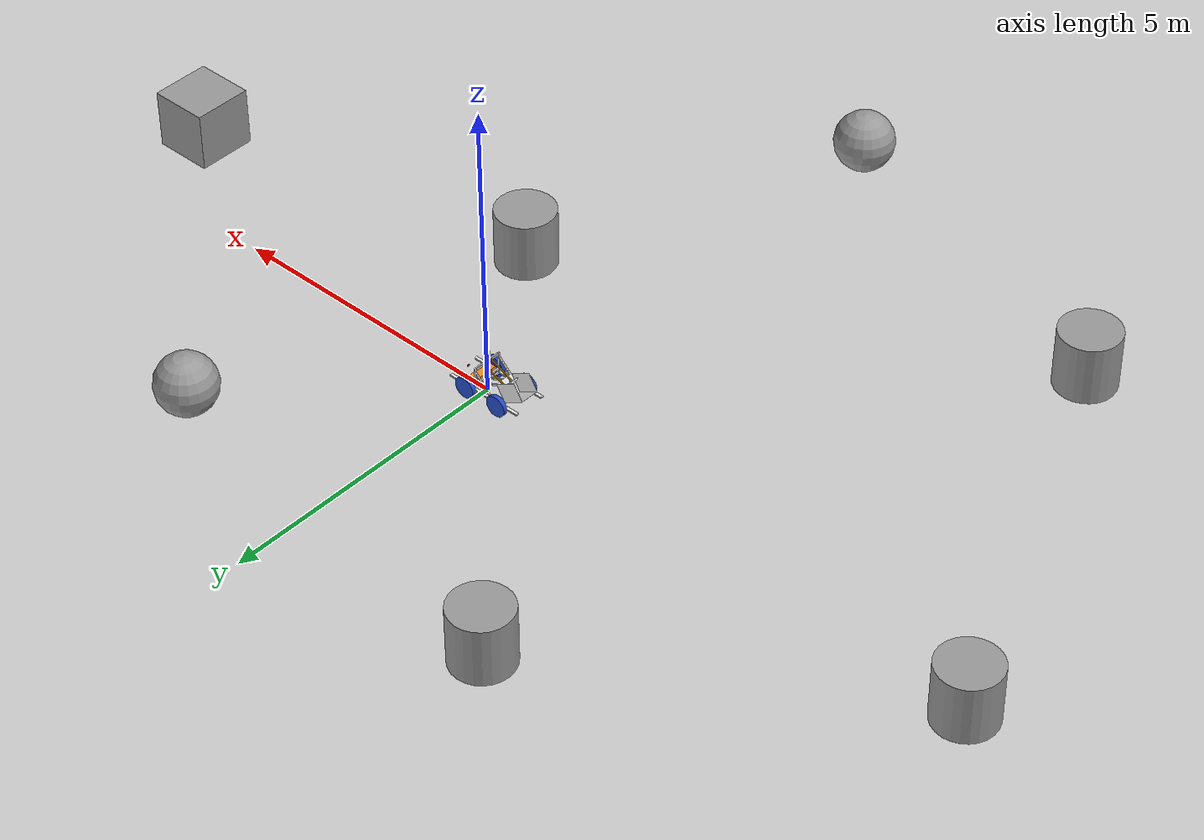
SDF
<sdf version="1.7">
 <world name="default">
  <light name="sun" type="directional">
   <pose>0 0 10 0 -0 0</pose>
   <diffuse>0.8 0.8 0.8 1</diffuse>
   <specular>0.2 0.2 0.2 1</specular>
   <attenuation>
    <range>1000</range>
    <constant>0.9</constant>
    <linear>0.01</linear>
    <quadratic>0.001</quadratic>
   </attenuation>
   <direction>-0.5 0.1 -0.9</direction>
   <spot><inner_angle>0</inner_angle><outer_angle>0</outer_angle><falloff>0</falloff></spot>
  </light>
  <model name="ground_plane">
   <static>1</static>
   <link name="link">
    <collision name="collision">
     <geometry><plane><normal>0 0 1</normal><size>100 100</size></plane></geometry>
     <surface><friction><ode><mu>100</mu><mu2>50</mu2></ode></friction></surface>
    </collision>
    <visual name="visual">
     <cast_shadows>0</cast_shadows>
     <geometry><plane><normal>0 0 1</normal><size>100 100</size></plane></geometry>
     <material>
      <script><uri>file://media/materials/scripts/gazebo.material</uri><name>Gazebo/Grey</name></script>
     </material>
    </visual>
   </link>
  </model>
  <gravity>0 0 -9.8</gravity>
  <magnetic_field>6e-06 2.3e-05 -4.2e-05</magnetic_field>
  <atmosphere type="adiabatic"/>
  <physics type="ode">
   <max_step_size>0.001</max_step_size>
   <real_time_factor>1</real_time_factor>
   <real_time_update_rate>1000</real_time_update_rate>
  </physics>
  <scene><ambient>0.4 0.4 0.4 1</ambient><background>0.7 0.7 0.7 1</background><shadows>1</shadows></scene>
  <audio><device>default</device></audio>
  <spherical_coordinates>
   <surface_model>EARTH_WGS84</surface_model>
   <latitude_deg>0</latitude_deg>
   <longitude_deg>0</longitude_deg>
   <elevation>0</elevation>
   <heading_deg>0</heading_deg>
  </spherical_coordinates>
  <model name="my_bot">
   <link name="base_link">
    <inertial>
     <pose>-0.133131 -0 0.074762 0 -0 0</pose>
     <mass>591.326</mass>
     <inertia>
      <ixx>31.0922</ixx>
      <ixy>4.72975e-16</ixy>
      <ixz>10.7603</ixz>
      <iyy>194.518</iyy>
      <iyz>-1.54585e-16</iyz>
      <izz>211.898</izz>
     </inertia>
    </inertial>
    <collision name="base_link_fixed_joint_lump__doser_back_collision">
     <pose>-0.4205 0 0.095 0 0.540722 0</pose>
     <geometry><box><size>0.005 0.3225 0.312</size></box></geometry>
    </collision>
    <collision name="base_link_fixed_joint_lump__doser_base_collision_1">
     <pose>-0.675 0 0.066 0 0.540722 0</pose>
     <geometry><box><size>0.4153 0.3225 0.005</size></box></geometry>
    </collision>
    <collision name="base_link_fixed_joint_lump__doser_left_collision_2">
     <pose>-0.597 -0.158753 0.2 0 0.540722 0</pose>
     <geometry><box><size>0.4153 0.005 0.307</size></box></geometry>
    </collision>
    <collision name="base_link_fixed_joint_lump__doser_right_collision_3">
     <pose>-0.597 0.158753 0.2 0 0.540722 0</pose>
     <geometry><box><size>0.4153 0.005 0.307</size></box></geometry>
    </collision>
    <collision name="base_link_fixed_joint_lump__actuator_left_collision_4">
     <pose>-0.205 -0.076025 0.285 0 -0.418879 0</pose>
     <geometry><box><size>0.4575 0.02 0.02</size></box></geometry>
    </collision>
    <collision name="base_link_fixed_joint_lump__actuator_right_collision_5">
     <pose>-0.205 0.076025 0.285 0 -0.418879 0</pose>
     <geometry><box><size>0.4575 0.02 0.02</size></box></geometry>
    </collision>
    <collision name="base_link_fixed_joint_lump__back_left_wheel_collision_6">
     <pose>-0.49 -0.3182 0 -1.5708 0 0</pose>
     <geometry><sphere><radius>0.1778</radius></sphere></geometry>
     <surface><friction><ode><mu>0.001</mu><mu2>0.001</mu2></ode></friction></surface>
    </collision>
    <collision name="base_link_fixed_joint_lump__back_right_wheel_collision_7">
     <pose>-0.49 0.3182 0 1.5708 -0 0</pose>
     <geometry><sphere><radius>0.1778</radius></sphere></geometry>
     <surface><friction><ode><mu>0.001</mu><mu2>0.001</mu2></ode></friction></surface>
    </collision>
    <collision name="base_link_fixed_joint_lump__chassis_base_left_collision_8">
     <pose>-0.17965 -0.2604 0 0 -0 0</pose>
     <geometry><box><size>1.3501 0.0508 0.0254</size></box></geometry>
    </collision>
    <collision name="base_link_fixed_joint_lump__chassis_base_right_collision_9">
     <pose>-0.17965 0.2604 0 0 -0 0</pose>
     <geometry><box><size>1.3501 0.0508 0.0254</size></box></geometry>
    </collision>
    <collision name="base_link_fixed_joint_lump__doser_profile_left_collision_10">
     <pose>-0.2286 -0.076025 0.1 0 0.418879 0</pose>
     <geometry><box><size>0.49 0.0254 0.0254</size></box></geometry>
    </collision>
    <collision name="base_link_fixed_joint_lump__doser_profile_right_collision_11">
     <pose>-0.2286 0.076025 0.1 0 0.418879 0</pose>
     <geometry><box><size>0.49 0.0254 0.0254</size></box></geometry>
    </collision>
    <collision name="base_link_fixed_joint_lump__doser_profile_top_collision_12">
     <pose>-0.4596 0 0.20245 0 0.418879 0</pose>
     <geometry><box><size>0.0254 0.3075 0.0254</size></box></geometry>
    </collision>
    <collision name="base_link_fixed_joint_lump__laser_frame_collision_13">
     <pose>0 0 0.5334 0 -0 0</pose>
     <geometry><cylinder><length>0.04</length><radius>0.05</radius></cylinder></geometry>
    </collision>
    <collision name="base_link_fixed_joint_lump__motor_base_back_collision_14">
     <pose>0.175 0 0 0 -0 0</pose>
     <geometry><box><size>0.0254 0.4702 0.0254</size></box></geometry>
    </collision>
    <collision name="base_link_fixed_joint_lump__motor_base_front_collision_15">
     <pose>0.1 0 0 0 -0 0</pose>
     <geometry><box><size>0.0254 0.4702 0.0254</size></box></geometry>
    </collision>
    <collision name="base_link_fixed_joint_lump__motor_collision_16">
     <pose>0.145 0 0.0375 0 -0 0</pose>
     <geometry><box><size>0.15 0.5 0.075</size></box></geometry>
    </collision>
    <collision name="base_link_fixed_joint_lump__tower_base_collision_17">
     <geometry><box><size>0.0254 0.4702 0.0254</size></box></geometry>
    </collision>
    <collision name="base_link_fixed_joint_lump__tower_middle_collision_18">
     <pose>0 0 0.08 0 -0 0</pose>
     <geometry><box><size>0.0254 0.4702 0.0254</size></box></geometry>
    </collision>
    <collision name="base_link_fixed_joint_lump__tower_support_left_collision_19">
     <pose>-0.15635 -0.2478 0.16 0 -0.785398 0</pose>
     <geometry><box><size>0.4572 0.0254 0.0254</size></box></geometry>
    </collision>
    <collision name="base_link_fixed_joint_lump__tower_support_right_collision_20">
     <pose>-0.15635 0.2478 0.16 0 -0.785398 0</pose>
     <geometry><box><size>0.4572 0.0254 0.0254</size></box></geometry>
    </collision>
    <collision name="base_link_fixed_joint_lump__tower_top_collision_21">
     <pose>0 0 0.3626 0 -0 0</pose>
     <geometry><box><size>0.0254 0.4702 0.0508</size></box></geometry>
    </collision>
    <collision name="base_link_fixed_joint_lump__tower_up_left_collision_22">
     <pose>0 -0.2478 0.194 0 -0 0</pose>
     <geometry><box><size>0.0254 0.0254 0.388</size></box></geometry>
    </collision>
    <collision name="base_link_fixed_joint_lump__tower_up_right_collision_23">
     <pose>0 0.2478 0.194 0 -0 0</pose>
     <geometry><box><size>0.0254 0.0254 0.388</size></box></geometry>
    </collision>
    <visual name="base_link_fixed_joint_lump__doser_back_visual">
     <pose>-0.4205 0 0.095 0 0.540722 0</pose>
     <geometry><box><size>0.005 0.3225 0.312</size></box></geometry>
     <material>
      <script><name>Gazebo/White</name><uri>file://media/materials/scripts/gazebo.material</uri></script>
     </material>
    </visual>
    <visual name="base_link_fixed_joint_lump__doser_base_visual_1">
     <pose>-0.675 0 0.066 0 0.540722 0</pose>
     <geometry><box><size>0.4153 0.3225 0.005</size></box></geometry>
     <material>
      <script><name>Gazebo/White</name><uri>file://media/materials/scripts/gazebo.material</uri></script>
     </material>
    </visual>
    <visual name="base_link_fixed_joint_lump__doser_left_visual_2">
     <pose>-0.597 -0.158753 0.2 0 0.540722 0</pose>
     <geometry><box><size>0.4153 0.005 0.307</size></box></geometry>
     <material>
      <script><name>Gazebo/White</name><uri>file://media/materials/scripts/gazebo.material</uri></script>
     </material>
    </visual>
    <visual name="base_link_fixed_joint_lump__doser_right_visual_3">
     <pose>-0.597 0.158753 0.2 0 0.540722 0</pose>
     <geometry><box><size>0.4153 0.005 0.307</size></box></geometry>
     <material>
      <script><name>Gazebo/White</name><uri>file://media/materials/scripts/gazebo.material</uri></script>
     </material>
    </visual>
    <visual name="base_link_fixed_joint_lump__actuator_left_visual_4">
     <pose>-0.205 -0.076025 0.285 0 -0.418879 0</pose>
     <geometry><box><size>0.4575 0.02 0.02</size></box></geometry>
     <material>
      <script><name>Gazebo/Orange</name><uri>file://media/materials/scripts/gazebo.material</uri></script>
     </material>
    </visual>
    <visual name="base_link_fixed_joint_lump__actuator_right_visual_5">
     <pose>-0.205 0.076025 0.285 0 -0.418879 0</pose>
     <geometry><box><size>0.4575 0.02 0.02</size></box></geometry>
     <material>
      <script><name>Gazebo/Orange</name><uri>file://media/materials/scripts/gazebo.material</uri></script>
     </material>
    </visual>
    <visual name="base_link_fixed_joint_lump__back_left_wheel_visual_6">
     <pose>-0.49 -0.3182 0 -1.5708 0 0</pose>
     <geometry><cylinder><length>0.07</length><radius>0.1778</radius></cylinder></geometry>
     <material>
      <script><name>Gazebo/Blue</name><uri>file://media/materials/scripts/gazebo.material</uri></script>
     </material>
    </visual>
    <visual name="base_link_fixed_joint_lump__back_right_wheel_visual_7">
     <pose>-0.49 0.3182 0 1.5708 -0 0</pose>
     <geometry><cylinder><length>0.07</length><radius>0.1778</radius></cylinder></geometry>
     <material>
      <script><name>Gazebo/Blue</name><uri>file://media/materials/scripts/gazebo.material</uri></script>
     </material>
    </visual>
    <visual name="base_link_fixed_joint_lump__camera_link_visual_8">
     <pose>0.3879 0 0.075 0 -0 0</pose>
     <geometry><box><size>0.01 0.03 0.03</size></box></geometry>
     <material>
      <script><name>Gazebo/Red</name><uri>file://media/materials/scripts/gazebo.material</uri></script>
     </material>
    </visual>
    <visual name="base_link_fixed_joint_lump__chassis_base_left_visual_9">
     <pose>-0.17965 -0.2604 0 0 -0 0</pose>
     <geometry><box><size>1.3501 0.0508 0.0254</size></box></geometry>
     <material>
      <script><name>Gazebo/White</name><uri>file://media/materials/scripts/gazebo.material</uri></script>
     </material>
    </visual>
    <visual name="base_link_fixed_joint_lump__chassis_base_right_visual_10">
     <pose>-0.17965 0.2604 0 0 -0 0</pose>
     <geometry><box><size>1.3501 0.0508 0.0254</size></box></geometry>
     <material>
      <script><name>Gazebo/White</name><uri>file://media/materials/scripts/gazebo.material</uri></script>
     </material>
    </visual>
    <visual name="base_link_fixed_joint_lump__doser_profile_left_visual_11">
     <pose>-0.2286 -0.076025 0.1 0 0.418879 0</pose>
     <geometry><box><size>0.49 0.0254 0.0254</size></box></geometry>
     <material>
      <script><name>Gazebo/White</name><uri>file://media/materials/scripts/gazebo.material</uri></script>
     </material>
    </visual>
    <visual name="base_link_fixed_joint_lump__doser_profile_right_visual_12">
     <pose>-0.2286 0.076025 0.1 0 0.418879 0</pose>
     <geometry><box><size>0.49 0.0254 0.0254</size></box></geometry>
     <material>
      <script><name>Gazebo/White</name><uri>file://media/materials/scripts/gazebo.material</uri></script>
     </material>
    </visual>
    <visual name="base_link_fixed_joint_lump__doser_profile_top_visual_13">
     <pose>-0.4596 0 0.20245 0 0.418879 0</pose>
     <geometry><box><size>0.0254 0.3075 0.0254</size></box></geometry>
     <material>
      <script><name>Gazebo/White</name><uri>file://media/materials/scripts/gazebo.material</uri></script>
     </material>
    </visual>
    <visual name="base_link_fixed_joint_lump__laser_frame_visual_14">
     <pose>0 0 0.5334 0 -0 0</pose>
     <geometry><cylinder><length>0.04</length><radius>0.05</radius></cylinder></geometry>
     <material>
      <script><name>Gazebo/Red</name><uri>file://media/materials/scripts/gazebo.material</uri></script>
     </material>
    </visual>
    <visual name="base_link_fixed_joint_lump__motor_base_back_visual_15">
     <pose>0.175 0 0 0 -0 0</pose>
     <geometry><box><size>0.0254 0.4702 0.0254</size></box></geometry>
     <material>
      <script><name>Gazebo/White</name><uri>file://media/materials/scripts/gazebo.material</uri></script>
     </material>
    </visual>
    <visual name="base_link_fixed_joint_lump__motor_base_front_visual_16">
     <pose>0.1 0 0 0 -0 0</pose>
     <geometry><box><size>0.0254 0.4702 0.0254</size></box></geometry>
     <material>
      <script><name>Gazebo/White</name><uri>file://media/materials/scripts/gazebo.material</uri></script>
     </material>
    </visual>
    <visual name="base_link_fixed_joint_lump__motor_visual_17">
     <pose>0.145 0 0.0375 0 -0 0</pose>
     <geometry><box><size>0.15 0.5 0.075</size></box></geometry>
     <material>
      <script><name>Gazebo/Orange</name><uri>file://media/materials/scripts/gazebo.material</uri></script>
     </material>
    </visual>
    <visual name="base_link_fixed_joint_lump__tower_base_visual_18">
     <geometry><box><size>0.0254 0.4702 0.0254</size></box></geometry>
     <material>
      <script><name>Gazebo/White</name><uri>file://media/materials/scripts/gazebo.material</uri></script>
     </material>
    </visual>
    <visual name="base_link_fixed_joint_lump__tower_middle_visual_19">
     <pose>0 0 0.08 0 -0 0</pose>
     <geometry><box><size>0.0254 0.4702 0.0254</size></box></geometry>
     <material>
      <script><name>Gazebo/White</name><uri>file://media/materials/scripts/gazebo.material</uri></script>
     </material>
    </visual>
    <visual name="base_link_fixed_joint_lump__tower_support_left_visual_20">
     <pose>-0.15635 -0.2478 0.16 0 -0.785398 0</pose>
     <geometry><box><size>0.4572 0.0254 0.0254</size></box></geometry>
     <material>
      <script><name>Gazebo/White</name><uri>file://media/materials/scripts/gazebo.material</uri></script>
     </material>
    </visual>
    <visual name="base_link_fixed_joint_lump__tower_support_right_visual_21">
     <pose>-0.15635 0.2478 0.16 0 -0.785398 0</pose>
     <geometry><box><size>0.4572 0.0254 0.0254</size></box></geometry>
     <material>
      <script><name>Gazebo/White</name><uri>file://media/materials/scripts/gazebo.material</uri></script>
     </material>
    </visual>
    <visual name="base_link_fixed_joint_lump__tower_top_visual_22">
     <pose>0 0 0.3626 0 -0 0</pose>
     <geometry><box><size>0.0254 0.4702 0.0508</size></box></geometry>
    </visual>
    <visual name="base_link_fixed_joint_lump__tower_up_left_visual_23">
     <pose>0 -0.2478 0.194 0 -0 0</pose>
     <geometry><box><size>0.0254 0.0254 0.388</size></box></geometry>
     <material>
      <script><name>Gazebo/White</name><uri>file://media/materials/scripts/gazebo.material</uri></script>
     </material>
    </visual>
    <visual name="base_link_fixed_joint_lump__tower_up_right_visual_24">
     <pose>0 0.2478 0.194 0 -0 0</pose>
     <geometry><box><size>0.0254 0.0254 0.388</size></box></geometry>
     <material>
      <script><name>Gazebo/White</name><uri>file://media/materials/scripts/gazebo.material</uri></script>
     </material>
    </visual>
    <sensor name="camera" type="depth">
     <visualize>1</visualize>
     <update_rate>10</update_rate>
     <camera>
      <horizontal_fov>1.089</horizontal_fov>
      <image><format>B8G8R8</format><width>640</width><height>480</height></image>
      <clip><near>0.05</near><far>8</far></clip>
     </camera>
     <plugin name="camera_controller" filename="libgazebo_ros_camera.so">
      <frame_name>camera_link_optical</frame_name>
      <min_depth>0.1</min_depth>
      <max_depth>100</max_depth>
     </plugin>
     <pose>0.3879 0 0.075 0 -0 0</pose>
    </sensor>
    <sensor name="imu_sensor" type="imu">
     <always_on>1</always_on>
     <update_rate>100</update_rate>
     <visualize>1</visualize>
     <plugin name="imu_plugin" filename="libgazebo_ros_imu_sensor.so">
      <ros><remapping>~/out:=imu/data_raw</remapping></ros>
      <topicName>imu</topicName>
      <bodyName>imu_link</bodyName>
      <update_rate>100</update_rate>
      <frameName>imu_link</frameName>
      <initialOrientationAsReference>0</initialOrientationAsReference>
     </plugin>
    </sensor>
    <sensor name="laser" type="ray">
     <visualize>1</visualize>
     <update_rate>10</update_rate>
     <ray>
      <scan>
       <horizontal>
        <samples>360</samples>
        <min_angle>-3.14</min_angle>
        <max_angle>3.14</max_angle>
        <resolution>1</resolution>
       </horizontal>
       <vertical><samples>1</samples><min_angle>0</min_angle><max_angle>0</max_angle></vertical>
      </scan>
      <range><min>0.3</min><max>12</max></range>
     </ray>
     <plugin name="laser_controller" filename="libgazebo_ros_ray_sensor.so">
      <ros><argument>~/out:=scan</argument></ros>
      <output_type>sensor_msgs/LaserScan</output_type>
      <frame_name>laser_frame</frame_name>
     </plugin>
     <pose>0 0 0.5334 0 -0 0</pose>
    </sensor>
   </link>
   <joint name="left_wheel_joint" type="revolute">
    <pose relative_to="base_link">0.14 0.3182 0 -1.5708 0 0</pose>
    <parent>base_link</parent>
    <child>left_wheel</child>
    <axis>
     <xyz>0 0 1</xyz>
     <limit><lower>-1e+16</lower><upper>1e+16</upper></limit>
     <dynamics><spring_reference>0</spring_reference><spring_stiffness>0</spring_stiffness></dynamics>
    </axis>
   </joint>
   <link name="left_wheel">
    <pose relative_to="left_wheel_joint">0 0 0 0 -0 0</pose>
    <inertial>
     <mass>56</mass>
     <inertia>
      <ixx>0.465446</ixx>
      <ixy>0</ixy>
      <ixz>0</ixz>
      <iyy>0.465446</iyy>
      <iyz>0</iyz>
      <izz>0.88516</izz>
     </inertia>
    </inertial>
    <collision name="left_wheel_collision">
     <geometry><sphere><radius>0.1778</radius></sphere></geometry>
    </collision>
    <visual name="left_wheel_visual">
     <geometry><cylinder><length>0.07</length><radius>0.1778</radius></cylinder></geometry>
     <material>
      <script><name>Gazebo/Blue</name><uri>file://media/materials/scripts/gazebo.material</uri></script>
     </material>
    </visual>
   </link>
   <joint name="right_wheel_joint" type="revolute">
    <pose relative_to="base_link">0.14 -0.3182 0 1.5708 -0 0</pose>
    <parent>base_link</parent>
    <child>right_wheel</child>
    <axis>
     <xyz>0 0 -1</xyz>
     <limit><lower>-1e+16</lower><upper>1e+16</upper></limit>
     <dynamics><spring_reference>0</spring_reference><spring_stiffness>0</spring_stiffness></dynamics>
    </axis>
   </joint>
   <link name="right_wheel">
    <pose relative_to="right_wheel_joint">0 0 0 0 -0 0</pose>
    <inertial>
     <mass>56</mass>
     <inertia>
      <ixx>0.465446</ixx>
      <ixy>0</ixy>
      <ixz>0</ixz>
      <iyy>0.465446</iyy>
      <iyz>0</iyz>
      <izz>0.88516</izz>
     </inertia>
    </inertial>
    <collision name="right_wheel_collision">
     <geometry><sphere><radius>0.1778</radius></sphere></geometry>
    </collision>
    <visual name="right_wheel_visual">
     <geometry><cylinder><length>0.07</length><radius>0.1778</radius></cylinder></geometry>
     <material>
      <script><name>Gazebo/Blue</name><uri>file://media/materials/scripts/gazebo.material</uri></script>
     </material>
    </visual>
   </link>
   <static>0</static>
   <plugin name="gazebo_ros2_control" filename="libgazebo_ros2_control.so">
    <parameters>/home/eashan/ros_phoenix_humble_ws/install/ros_phoenix/share/ros_phoenix/config/diffbot_controllers.yaml</parameters>
    <parameters>/home/eashan/ros_phoenix_humble_ws/install/ros_phoenix/share/ros_phoenix/config/gaz_ros2_ctl_use_sim.yaml</parameters>
   </plugin>
   <pose>5e-06 1e-05 0.1778 0 -0 2.9e-05</pose>
  </model>
  <model name="unit_cylinder">
   <pose>-3.80681 4.06263 0.499992 -3e-06 4e-06 0</pose>
   <link name="link">
    <inertial>
     <mass>1</mass>
     <inertia><ixx>0.145833</ixx><ixy>0</ixy><ixz>0</ixz><iyy>0.145833</iyy><iyz>0</iyz><izz>0.125</izz></inertia>
    </inertial>
    <collision name="collision">
     <geometry><cylinder><radius>0.5</radius><length>1</length></cylinder></geometry>
    </collision>
    <visual name="visual">
     <geometry><cylinder><radius>0.5</radius><length>1</length></cylinder></geometry>
     <material>
      <script><name>Gazebo/Grey</name><uri>file://media/materials/scripts/gazebo.material</uri></script>
     </material>
    </visual>
   </link>
  </model>
  <model name="unit_cylinder_0">
   <pose>1.67764 -2.60703 0.499998 3e-06 -4e-06 0</pose>
   <link name="link">
    <inertial>
     <mass>1</mass>
     <inertia><ixx>0.145833</ixx><ixy>0</ixy><ixz>0</ixz><iyy>0.145833</iyy><iyz>0</iyz><izz>0.125</izz></inertia>
    </inertial>
    <collision name="collision">
     <geometry><cylinder><radius>0.5</radius><length>1</length></cylinder></geometry>
    </collision>
    <visual name="visual">
     <geometry><cylinder><radius>0.5</radius><length>1</length></cylinder></geometry>
     <material>
      <script><name>Gazebo/Grey</name><uri>file://media/materials/scripts/gazebo.material</uri></script>
     </material>
    </visual>
   </link>
  </model>
  <model name="unit_sphere">
   <pose>2.93827 3.2488 0.5 0 -0 0</pose>
   <link name="link">
    <inertial>
     <mass>1</mass>
     <inertia><ixx>0.1</ixx><ixy>0</ixy><ixz>0</ixz><iyy>0.1</iyy><iyz>0</iyz><izz>0.1</izz></inertia>
    </inertial>
    <collision name="collision"><geometry><sphere><radius>0.5</radius></sphere></geometry></collision>
    <visual name="visual">
     <geometry><sphere><radius>0.5</radius></sphere></geometry>
     <material>
      <script><name>Gazebo/Grey</name><uri>file://media/materials/scripts/gazebo.material</uri></script>
     </material>
    </visual>
   </link>
  </model>
  <model name="unit_cylinder_1">
   <pose>-9.28132 0.552613 0.499993 -3e-06 -3e-06 0</pose>
   <link name="link">
    <inertial>
     <mass>1</mass>
     <inertia><ixx>0.145833</ixx><ixy>0</ixy><ixz>0</ixz><iyy>0.145833</iyy><iyz>0</iyz><izz>0.125</izz></inertia>
    </inertial>
    <collision name="collision">
     <geometry><cylinder><radius>0.5</radius><length>1</length></cylinder></geometry>
    </collision>
    <visual name="visual">
     <geometry><cylinder><radius>0.5</radius><length>1</length></cylinder></geometry>
     <material>
      <script><name>Gazebo/Grey</name><uri>file://media/materials/scripts/gazebo.material</uri></script>
     </material>
    </visual>
   </link>
  </model>
  <model name="unit_cylinder_2">
   <pose>-6.4267 -6.03614 0.499997 3e-06 4e-06 -0</pose>
   <link name="link">
    <inertial>
     <mass>1</mass>
     <inertia><ixx>0.145833</ixx><ixy>0</ixy><ixz>0</ixz><iyy>0.145833</iyy><iyz>0</iyz><izz>0.125</izz></inertia>
    </inertial>
    <collision name="collision">
     <geometry><cylinder><radius>0.5</radius><length>1</length></cylinder></geometry>
    </collision>
    <visual name="visual">
     <geometry><cylinder><radius>0.5</radius><length>1</length></cylinder></geometry>
     <material>
      <script><name>Gazebo/Grey</name><uri>file://media/materials/scripts/gazebo.material</uri></script>
     </material>
    </visual>
   </link>
  </model>
  <model name="unit_sphere_0">
   <pose>-0.651662 -7.96938 0.5 0 -0 0</pose>
   <link name="link">
    <inertial>
     <mass>1</mass>
     <inertia><ixx>0.1</ixx><ixy>0</ixy><ixz>0</ixz><iyy>0.1</iyy><iyz>0</iyz><izz>0.1</izz></inertia>
    </inertial>
    <collision name="collision"><geometry><sphere><radius>0.5</radius></sphere></geometry></collision>
    <visual name="visual">
     <geometry><sphere><radius>0.5</radius></sphere></geometry>
     <material>
      <script><name>Gazebo/Grey</name><uri>file://media/materials/scripts/gazebo.material</uri></script>
     </material>
    </visual>
   </link>
  </model>
  <model name="unit_box">
   <pose>7.60234 -1.3633 0.5 0 -0 0</pose>
   <link name="link">
    <inertial>
     <mass>1</mass>
     <inertia>
      <ixx>0.166667</ixx>
      <ixy>0</ixy>
      <ixz>0</ixz>
      <iyy>0.166667</iyy>
      <iyz>0</iyz>
      <izz>0.166667</izz>
     </inertia>
    </inertial>
    <collision name="collision"><geometry><box><size>1 1 1</size></box></geometry></collision>
    <visual name="visual">
     <geometry><box><size>1 1 1</size></box></geometry>
     <material>
      <script><name>Gazebo/Grey</name><uri>file://media/materials/scripts/gazebo.material</uri></script>
     </material>
    </visual>
   </link>
  </model>
 </world>
</sdf>
